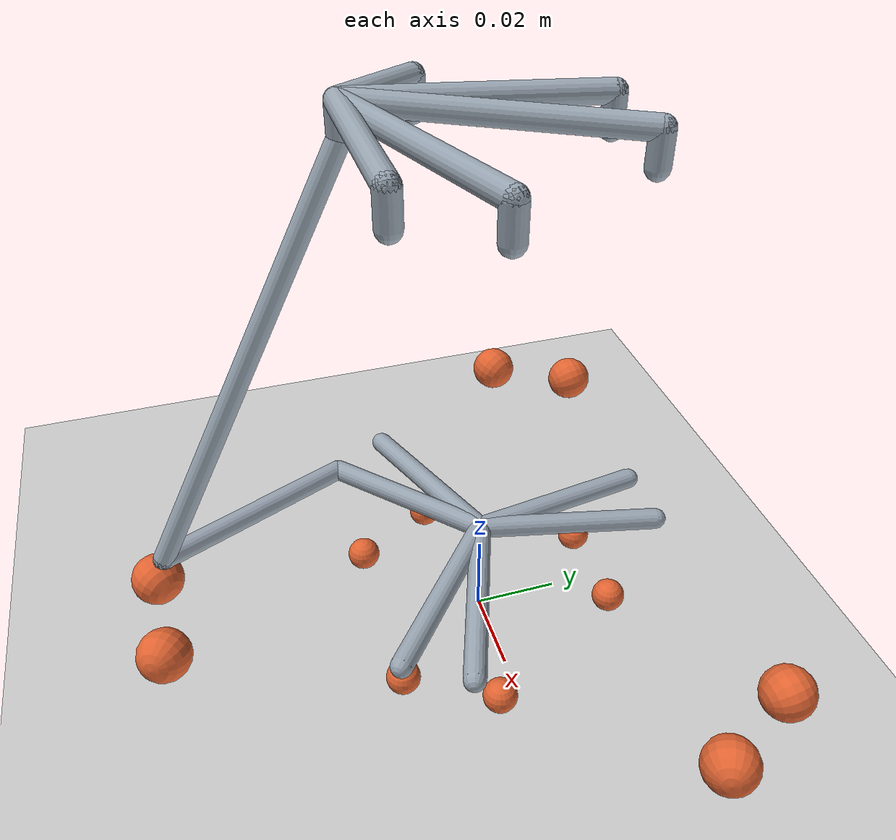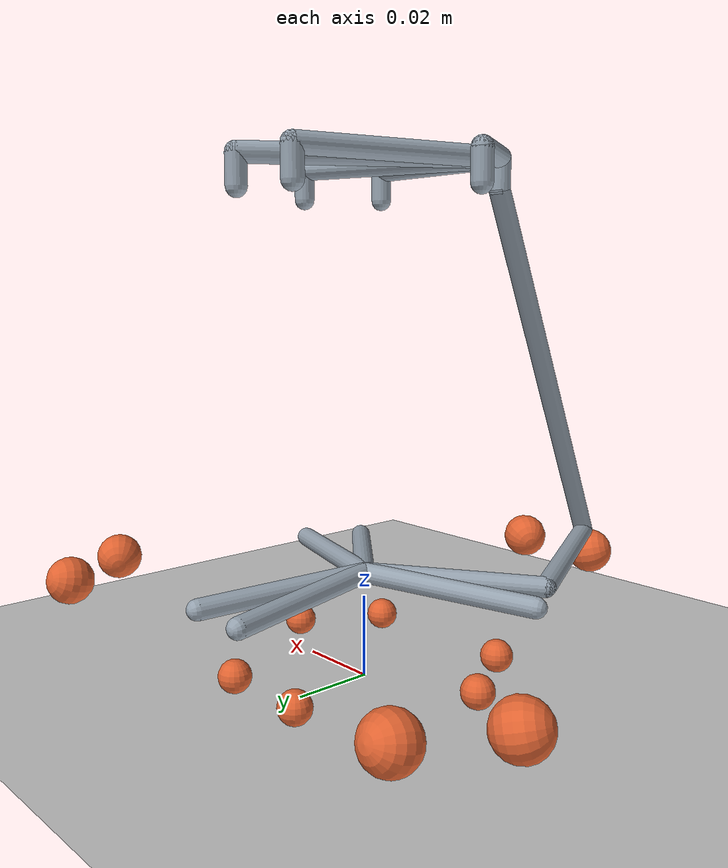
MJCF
<mujoco model="stewy">
  <compiler angle="radian" inertiafromgeom="false" autolimits="true"/>
  <option timestep="0.002" integrator="implicitfast" gravity="0 0 -9.81" cone="pyramidal"/>
  <visual><headlight ambient="0.4 0.4 0.4"/></visual>
  <default>
    <geom contype="0" conaffinity="0"/>
    <default class="contact"><geom contype="1" conaffinity="2" condim="3" priority="1" solref="0.004 1"
      rgba="0.9 0.4 0.2 1"/></default>
    <default class="stick"><geom size="0.0025" rgba="0.6 0.65 0.7 1" group="1"/></default>
  </default>
  <worldbody>
    <light pos="0 0 1" dir="0 0 -1" directional="true"/>
    <geom name="floor" type="plane" size="2 2 0.01" contype="2" conaffinity="1" friction="1 0.005 0.0001"
      rgba="0.8 0.8 0.8 1"/>
    <body name="root" pos="0 0 0.00327754" quat="1 0 0 0">
      <inertial pos="9.895712e-10 6.372627e-05 0.02260736" quat="0.9999907 0.004334128 8.800773e-09 -2.030556e-06" mass="0.1689299" diaginertia="0.0001090603 0.0001095408 0.0001324949"/>
      <freejoint name="root"/>
      <geom name="root_foot0" class="contact" type="sphere" pos="-0.0319276 -0.00532511 0.00122246" size="0.004" friction="0.51 0.005 0.0001"/>
      <geom name="root_foot1" class="contact" type="sphere" pos="-0.0113244 0.0303606 0.00122246" size="0.004" friction="0.51 0.005 0.0001"/>
      <geom name="root_foot2" class="contact" type="sphere" pos="0.031921 -0.00532511 0.00122246" size="0.004" friction="0.51 0.005 0.0001"/>
      <geom name="root_foot3" class="contact" type="sphere" pos="-0.0206064 -0.0249339 0.00122246" size="0.004" friction="0.51 0.005 0.0001"/>
      <geom name="root_foot4" class="contact" type="sphere" pos="0.0113179 0.0303606 0.00122246" size="0.004" friction="0.51 0.005 0.0001"/>
      <geom name="root_foot5" class="contact" type="sphere" pos="0.0205999 -0.0249339 0.00122246" size="0.004" friction="0.51 0.005 0.0001"/>
      <geom class="stick" type="capsule" fromto="9.895712e-10 6.372627e-05 0.02260736 -0.03273774 -0.02781822 0.02088458"/>
      <geom class="stick" type="capsule" fromto="9.895712e-10 6.372627e-05 0.02260736 0.04048457 -0.01438895 0.02088458"/>
      <geom class="stick" type="capsule" fromto="9.895712e-10 6.372627e-05 0.02260736 -0.007756632 0.0423088 0.02088458"/>
      <geom class="stick" type="capsule" fromto="9.895712e-10 6.372627e-05 0.02260736 0.007749918 0.04230884 0.02088458"/>
      <geom class="stick" type="capsule" fromto="9.895712e-10 6.372627e-05 0.02260736 -0.04049108 -0.01438914 0.02088458"/>
      <geom class="stick" type="capsule" fromto="9.895712e-10 6.372627e-05 0.02260736 0.03273131 -0.02781807 0.02088458"/>
      <body name="left_arm" pos="-0.03273774 -0.02781822 0.02088458" quat="0.6874431 0.5269129 -0.3048849 -0.3960176">
        <inertial pos="0.0344266 -0.001797094 0.003987836" quat="0.999924 -0.0006647862 -0.0008847926 -0.01228697" mass="0.0055741" diaginertia="1.06851e-07 2.167643e-06 2.229994e-06"/>
        <joint name="servo_revolute_left_arm" type="hinge" pos="0 0 0" axis="0 0 1" armature="0.000163167" range="-1.5707 1.5707" limited="true"/>
        <geom name="left_arm_arm0" class="contact" type="sphere" pos="0.05156 -0.00562 0.004" size="0.006" friction="0.28 0.005 0.0001"/>
        <geom class="stick" type="capsule" fromto="0 0 0 0.04975042 0.000931254 0.004000013"/>
        <body name="leg_rod" pos="0.04975042 0.0009312541 0.00400001" quat="0.5010559 -0.643893 0.2262654 0.5321173">
          <inertial pos="-8.573518e-06 1.3315e-07 0.05567341" quat="1 -1.331188e-06 -0.0001511893 -2.16475e-05" mass="0.003368392" diaginertia="4.536875e-06 4.538086e-06 1.66676e-08"/>
          <joint name="ball_leg0" type="ball" pos="-2.192871e-09 -2.361493e-09 -5.313245e-10" damping="1e-6"/>
          <geom class="stick" type="capsule" fromto="-2.192871e-09 -2.361493e-09 -5.313245e-10 -4.670181e-08 2.589908e-07 0.1030047"/>
          <body name="tang_m3" pos="-4.938871e-08 2.977593e-07 0.1030048" quat="0.6844032 0.1777545 -0.1777584 0.6843957">
            <inertial pos="4.93424e-20 -5.89405e-21 0.00641644" quat="1 0 0 0" mass="0.00122525" diaginertia="2.51446e-08 2.55222e-08 1.91867e-09"/>
            <joint name="ujoint_leg0_clevis" type="hinge" pos="0 0 0" axis="0 -1 0" damping="1e-6"/>
            <geom class="stick" type="capsule" fromto="0 0 0 -3.46945e-18 2.08167e-17 0.0073"/>
            <body name="top_plate" pos="-5.38963e-09 -5.836864e-09 0.0103" quat="-1.187727e-06 0.9370307 -0.3492471 4.425938e-07">
              <inertial pos="0.03 0.0057735 0.00191077" quat="1 0 0 0" mass="0.01306367" diaginertia="3.77205e-06 3.77205e-06 7.48633e-06"/>
              <joint name="plate_rev_leg0" type="hinge" pos="4.522726e-10 -3.116881e-11 0.003000001" axis="1.001495e-10 8.599071e-11 -1" damping="1e-6"/>
              <geom class="stick" type="capsule" fromto="4.522726e-10 -3.116881e-11 0.003000001 0.04000133 0.03464144 0.00300062"/>
              <geom class="stick" type="capsule" fromto="4.522726e-10 -3.116881e-11 0.003000001 0.06000166 -2.5106e-07 0.003000334"/>
              <geom class="stick" type="capsule" fromto="4.522726e-10 -3.116881e-11 0.003000001 0.009999879 -0.01732063 0.003000011"/>
              <geom class="stick" type="capsule" fromto="4.522726e-10 -3.116881e-11 0.003000001 0.02000081 0.03464214 0.002999975"/>
              <geom class="stick" type="capsule" fromto="4.522726e-10 -3.116881e-11 0.003000001 0.05000097 -0.01732156 0.003000191"/>
              <body name="tang_m3_1" pos="0.04000125 0.03464134 0.01030062" quat="5.771269e-06 -0.9861061 -0.1661167 -6.832524e-06">
                <inertial pos="4.93424e-20 -5.89405e-21 0.00641644" quat="1 0 0 0" mass="0.00122525" diaginertia="2.51446e-08 2.55222e-08 1.91867e-09"/>
                <joint name="plate_rev_leg1" type="hinge" pos="3.46945e-18 -1.73472e-17 0.0073" axis="2.395262e-06 8.30583e-07 1" damping="1e-6"/>
                <geom class="stick" type="capsule" fromto="3.46945e-18 -1.73472e-17 0.0073 0 0 0"/>
                <body name="leg_rod_1" pos="0.05095709 2.171933e-07 -0.08951731" quat="0.6835704 0.1809275 -0.1809268 -0.6835658">
                  <inertial pos="-8.573519e-06 -1.329763e-07 0.05567341" quat="1 1.334527e-06 -0.0001511893 -1.9e-05" mass="0.003368392" diaginertia="4.536875e-06 4.538086e-06 1.66676e-08"/>
                  <joint name="ujoint_leg1_clevis" type="hinge" pos="-4.670318e-08 -2.589902e-07 0.1030047" axis="1 -6.276371e-06 2.642192e-06" damping="1e-6"/>
                </body>
              </body>
              <body name="tang_m3_2" pos="0.0600015 -3.127826e-07 0.01030034" quat="1.180261e-05 -0.3387564 0.9408741 2.647946e-07">
                <inertial pos="4.93424e-20 -5.89405e-21 0.00641644" quat="1 0 0 0" mass="0.00122525" diaginertia="2.51446e-08 2.55222e-08 1.91867e-09"/>
                <joint name="plate_rev_leg2" type="hinge" pos="-3.46945e-17 -1.04083e-17 0.0073" axis="-1.953305e-06 -1.61609e-06 1" damping="1e-6"/>
                <geom class="stick" type="capsule" fromto="-3.46945e-17 -1.04083e-17 0.0073 0 0 0"/>
                <body name="leg_rod_2" pos="-0.05070135 -2.186806e-07 -0.08966244" quat="0.6838257 -0.1799538 0.1799522 -0.6838247">
                  <inertial pos="-8.558777e-06 -1.329764e-07 0.05567341" quat="1 1.334524e-06 -0.0001509433 -1.899999e-05" mass="0.003368392" diaginertia="4.536875e-06 4.538086e-06 1.666759e-08"/>
                  <joint name="ujoint_leg2_clevis" type="hinge" pos="4.670318e-08 -2.589905e-07 0.1030047" axis="0.9999999 -9.64279e-07 -2.628963e-06" damping="1e-6"/>
                </body>
              </body>
              <body name="tang_m3_3" pos="0.009999788 -0.01732065 0.01030001" quat="5.340635e-06 -0.7692645 0.6389304 -3.677287e-06">
                <inertial pos="4.93424e-20 -5.89405e-21 0.00641644" quat="1 0 0 0" mass="0.00122525" diaginertia="2.51446e-08 2.55222e-08 1.91867e-09"/>
                <joint name="plate_rev_leg3" type="hinge" pos="0 -6.93889e-18 0.0073" axis="-4.653137e-07 2.492113e-06 1" damping="1e-6"/>
                <geom class="stick" type="capsule" fromto="0 -6.93889e-18 0.0073 0 0 0"/>
                <body name="leg_rod_3" pos="0.05051561 -2.283951e-07 -0.08976721" quat="0.6840135 0.1792418 -0.1792448 -0.6840097">
                  <inertial pos="-8.558777e-06 -1.32931e-07 0.05567341" quat="1 1.334123e-06 -0.0001509433 -2.165272e-05" mass="0.003368392" diaginertia="4.536875e-06 4.538086e-06 1.666759e-08"/>
                  <joint name="ujoint_leg3_clevis" type="hinge" pos="4.670181e-08 -2.589908e-07 0.1030047" axis="1 -6.357825e-06 -2.647371e-06" damping="1e-6"/>
                </body>
              </body>
              <body name="tang_m3_4" pos="0.02000076 0.034642 0.01029997" quat="1.823811e-06 0.174814 0.9846015 1.014935e-05">
                <inertial pos="4.93424e-20 -5.89405e-21 0.00641644" quat="1 0 0 0" mass="0.00122525" diaginertia="2.51446e-08 2.55222e-08 1.91867e-09"/>
                <joint name="plate_rev_leg4" type="hinge" pos="0 1.38778e-17 0.0073" axis="-2.380238e-06 8.727042e-07 1" damping="1e-6"/>
                <geom class="stick" type="capsule" fromto="0 1.38778e-17 0.0073 0 0 0"/>
                <body name="leg_rod_4" pos="0.04990675 2.358776e-07 -0.09010708" quat="0.6846127 0.1769301 -0.1769274 -0.6846151">
                  <inertial pos="-8.57352e-06 1.33059e-07 0.05567341" quat="1 -1.330385e-06 -0.0001511893 -1.634203e-05" mass="0.003368392" diaginertia="4.536875e-06 4.538086e-06 1.66676e-08"/>
                  <joint name="ujoint_leg4_clevis" type="hinge" pos="-4.670456e-08 2.589903e-07 0.1030047" axis="1 4.339928e-06 2.643889e-06" damping="1e-6"/>
                </body>
              </body>
              <body name="tang_m3_5" pos="0.05000085 -0.01732155 0.01030019" quat="5.562651e-06 -0.6425439 0.7662489 -5.63844e-06">
                <inertial pos="4.93424e-20 -5.89405e-21 0.00641644" quat="1 0 0 0" mass="0.00122525" diaginertia="2.51446e-08 2.55222e-08 1.91867e-09"/>
                <joint name="plate_rev_leg5" type="hinge" pos="-3.46945e-18 1.38778e-17 0.0073" axis="2.496393e-06 -4.417796e-07 1" damping="1e-6"/>
                <geom class="stick" type="capsule" fromto="-3.46945e-18 1.38778e-17 0.0073 0 0 0"/>
                <body name="leg_rod_5" pos="0.05051635 -2.228242e-07 -0.08976677" quat="0.6840105 0.1792469 -0.1792489 -0.6840102">
                  <inertial pos="-8.558777e-06 1.331045e-07 0.05567341" quat="1 -1.330791e-06 -0.0001509433 -1.899476e-05" mass="0.003368392" diaginertia="4.536875e-06 4.538086e-06 1.666759e-08"/>
                  <joint name="ujoint_leg5_clevis" type="hinge" pos="4.670318e-08 2.589902e-07 0.1030047" axis="1 -1.04199e-06 -2.646131e-06" damping="1e-6"/>
                </body>
              </body>
            </body>
          </body>
        </body>
      </body>
      <body name="left_arm_1" pos="0.04048457 -0.01438895 0.02088458" quat="0.6860989 0.5279413 0.3031007 0.398342">
        <inertial pos="0.0344266 -0.001797094 0.003987836" quat="0.999924 -0.0006647862 -0.0008847926 -0.01228697" mass="0.0055741" diaginertia="1.06851e-07 2.167643e-06 2.229994e-06"/>
        <joint name="servo_revolute_left_arm_1" type="hinge" pos="0 0 0" axis="0 0 1" armature="0.000163167" range="-1.5707 1.5707" limited="true"/>
        <geom name="left_arm_1_arm0" class="contact" type="sphere" pos="0.05156 -0.00562 0.004" size="0.006" friction="0.28 0.005 0.0001"/>
      </body>
      <body name="left_arm_2" pos="-0.007756632 0.0423088 0.02088458" quat="-0.001032456 0.0007927848 0.6087621 0.7933517">
        <inertial pos="0.0344266 -0.001797094 0.003987836" quat="0.999924 -0.0006647862 -0.0008847926 -0.01228697" mass="0.0055741" diaginertia="1.06851e-07 2.167643e-06 2.229994e-06"/>
        <joint name="servo_revolute_left_arm_2" type="hinge" pos="0 0 0" axis="0 0 1" armature="0.000163167" range="-1.5707 1.5707" limited="true"/>
        <geom name="left_arm_2_arm0" class="contact" type="sphere" pos="0.05156 -0.00562 0.004" size="0.006" friction="0.28 0.005 0.0001"/>
      </body>
      <body name="right_arm" pos="0.007749918 0.04230884 0.02088458" quat="0.000522599 -0.0004003249 0.6087625 0.7933523">
        <inertial pos="-0.0344266 -0.001797094 0.003987836" quat="0.999924 -0.0006647862 0.0008847926 0.01228697" mass="0.0055741" diaginertia="1.06851e-07 2.167643e-06 2.229994e-06"/>
        <joint name="servo_revolute_right_arm" type="hinge" pos="0 0 0" axis="0 0 1" armature="0.000163167" range="-1.5707 1.5707" limited="true"/>
        <geom name="right_arm_arm0" class="contact" type="sphere" pos="-0.05156 -0.00562 0.004" size="0.006" friction="0.28 0.005 0.0001"/>
      </body>
      <body name="right_arm_1" pos="-0.04049108 -0.01438914 0.02088458" quat="0.6863157 0.5277766 -0.3033872 -0.3979684">
        <inertial pos="-0.0344266 -0.001797094 0.003987836" quat="0.999924 -0.0006647862 0.0008847926 0.01228697" mass="0.0055741" diaginertia="1.06851e-07 2.167643e-06 2.229994e-06"/>
        <joint name="servo_revolute_right_arm_1" type="hinge" pos="0 0 0" axis="0 0 1" armature="0.000163167" range="-1.5707 1.5707" limited="true"/>
        <geom name="right_arm_1_arm0" class="contact" type="sphere" pos="-0.05156 -0.00562 0.004" size="0.006" friction="0.28 0.005 0.0001"/>
      </body>
      <body name="right_arm_2" pos="0.03273131 -0.02781807 0.02088458" quat="0.6868128 0.5273963 0.3040479 0.3971099">
        <inertial pos="-0.0344266 -0.001797094 0.003987836" quat="0.999924 -0.0006647862 0.0008847926 0.01228697" mass="0.0055741" diaginertia="1.06851e-07 2.167643e-06 2.229994e-06"/>
        <joint name="servo_revolute_right_arm_2" type="hinge" pos="0 0 0" axis="0 0 1" armature="0.000163167" range="-1.5707 1.5707" limited="true"/>
        <geom name="right_arm_2_arm0" class="contact" type="sphere" pos="-0.05156 -0.00562 0.004" size="0.006" friction="0.28 0.005 0.0001"/>
      </body>
    </body>
  </worldbody>
  <equality>
    <connect name="ball_leg1" body1="left_arm_1" body2="leg_rod_1" anchor="0.04975042 0.000931254 0.004000013" solref="0.004 1"/>
    <connect name="ball_leg2" body1="right_arm" body2="leg_rod_2" anchor="-0.04975042 0.000931254 0.004000013" solref="0.004 1"/>
    <connect name="ball_leg3" body1="right_arm_1" body2="leg_rod_3" anchor="-0.04975042 0.000931254 0.004000013" solref="0.004 1"/>
    <connect name="ball_leg4" body1="right_arm_2" body2="leg_rod_4" anchor="-0.04975042 0.000931254 0.004000013" solref="0.004 1"/>
    <connect name="ball_leg5" body1="left_arm_2" body2="leg_rod_5" anchor="0.04975042 0.000931254 0.004000013" solref="0.004 1"/>
  </equality>
  <actuator>
    <motor name="servo_revolute_left_arm" joint="servo_revolute_left_arm" gear="1" ctrllimited="false"/>
    <motor name="servo_revolute_left_arm_1" joint="servo_revolute_left_arm_1" gear="1" ctrllimited="false"/>
    <motor name="servo_revolute_right_arm" joint="servo_revolute_right_arm" gear="1" ctrllimited="false"/>
    <motor name="servo_revolute_right_arm_1" joint="servo_revolute_right_arm_1" gear="1" ctrllimited="false"/>
    <motor name="servo_revolute_right_arm_2" joint="servo_revolute_right_arm_2" gear="1" ctrllimited="false"/>
    <motor name="servo_revolute_left_arm_2" joint="servo_revolute_left_arm_2" gear="1" ctrllimited="false"/>
  </actuator>
</mujoco>
